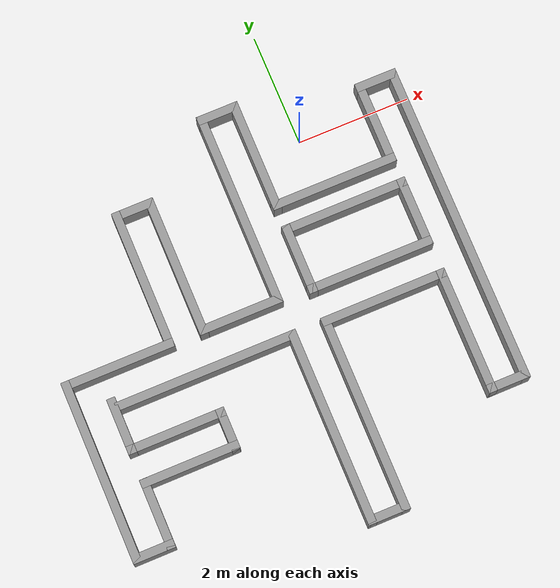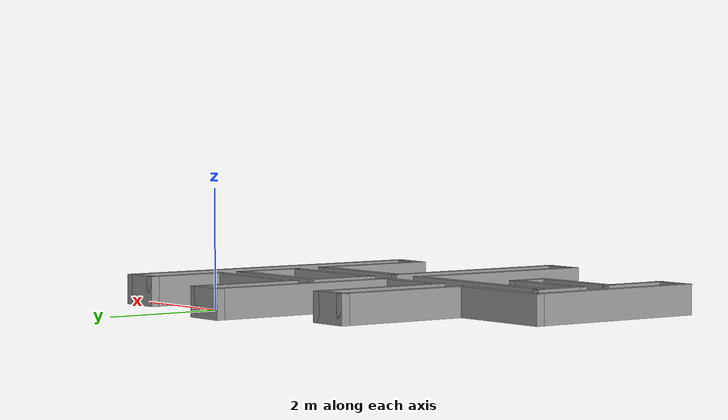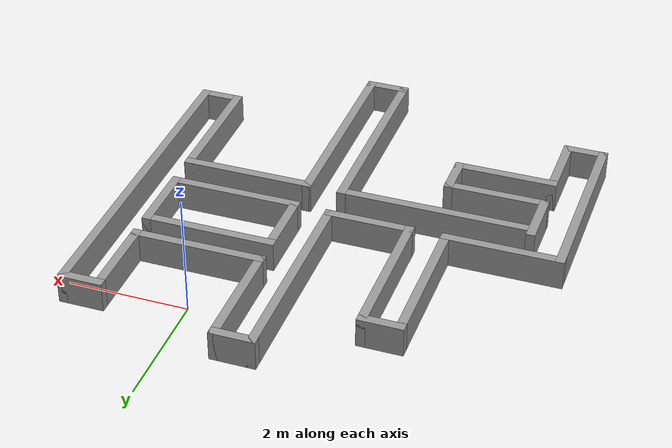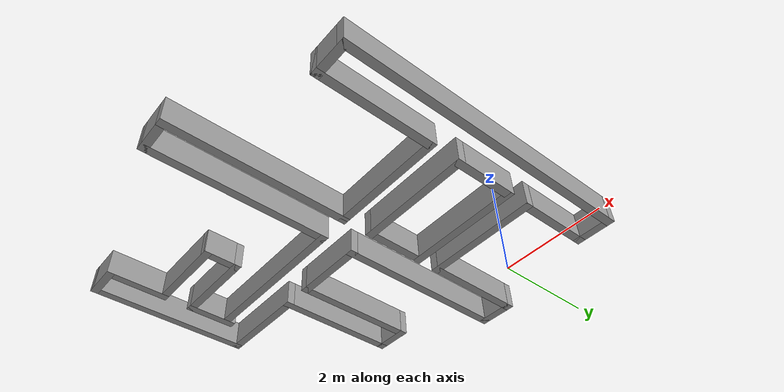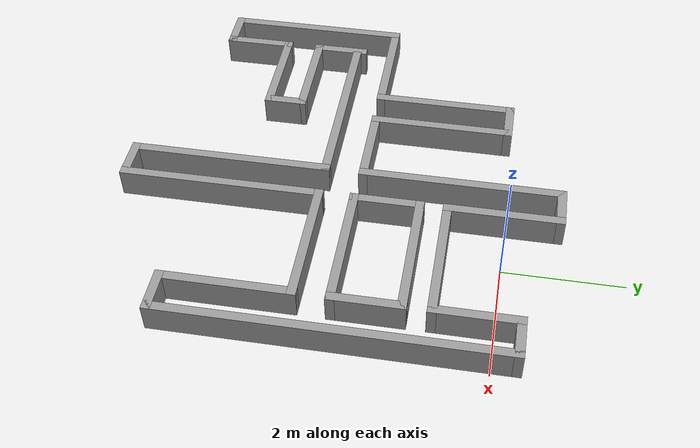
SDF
<?xml version='1.0'?>
<sdf version='1.7'>
  <model name='walls'>
    <pose>-1.67 -2.785 0 0 -0 0</pose>
    <link name='Wall_1'>
      <collision name='Wall_1_Collision'>
        <geometry>
          <box>
            <size>3.25 0.15 0.5</size>
          </box>
        </geometry>
        <pose>0 0 0.25 0 -0 0</pose>
      </collision>
      <visual name='Wall_1_Visual'>
        <pose>0 0 0.25 0 -0 0</pose>
        <geometry>
          <box>
            <size>3.25 0.15 0.5</size>
          </box>
        </geometry>
        <material>
          <script>
            <uri>file://media/materials/scripts/gazebo.material</uri>
            <name>Gazebo/Grey</name>
          </script>
          <ambient>1 1 1 1</ambient>
        </material>
        <meta>
          <layer>0</layer>
        </meta>
      </visual>
      <pose>-1.3 -0.325 0 0 -0 0</pose>
    </link>
    <link name='Wall_10'>
      <collision name='Wall_10_Collision'>
        <geometry>
          <box>
            <size>1.5 0.15 0.5</size>
          </box>
        </geometry>
        <pose>0 0 0.25 0 -0 0</pose>
      </collision>
      <visual name='Wall_10_Visual'>
        <pose>0 0 0.25 0 -0 0</pose>
        <geometry>
          <box>
            <size>1.5 0.15 0.5</size>
          </box>
        </geometry>
        <material>
          <script>
            <uri>file://media/materials/scripts/gazebo.material</uri>
            <name>Gazebo/Grey</name>
          </script>
          <ambient>1 1 1 1</ambient>
        </material>
        <meta>
          <layer>0</layer>
        </meta>
      </visual>
      <pose>2.95 2.5 0 0 -0 -1.5708</pose>
    </link>
    <link name='Wall_11'>
      <collision name='Wall_11_Collision'>
        <geometry>
          <box>
            <size>2.25 0.15 0.5</size>
          </box>
        </geometry>
        <pose>0 0 0.25 0 -0 0</pose>
      </collision>
      <visual name='Wall_11_Visual'>
        <pose>0 0 0.25 0 -0 0</pose>
        <geometry>
          <box>
            <size>2.25 0.15 0.5</size>
          </box>
        </geometry>
        <material>
          <script>
            <uri>file://media/materials/scripts/gazebo.material</uri>
            <name>Gazebo/Grey</name>
          </script>
          <ambient>1 1 1 1</ambient>
        </material>
        <meta>
          <layer>0</layer>
        </meta>
      </visual>
      <pose>1.9 1.825 0 0 -0 3.14159</pose>
    </link>
    <link name='Wall_12'>
      <collision name='Wall_12_Collision'>
        <geometry>
          <box>
            <size>2 0.15 0.5</size>
          </box>
        </geometry>
        <pose>0 0 0.25 0 -0 0</pose>
      </collision>
      <visual name='Wall_12_Visual'>
        <pose>0 0 0.25 0 -0 0</pose>
        <geometry>
          <box>
            <size>2 0.15 0.5</size>
          </box>
        </geometry>
        <material>
          <script>
            <uri>file://media/materials/scripts/gazebo.material</uri>
            <name>Gazebo/Grey</name>
          </script>
          <ambient>1 1 1 1</ambient>
        </material>
        <meta>
          <layer>0</layer>
        </meta>
      </visual>
      <pose>0.85 2.75 0 0 -0 1.5708</pose>
    </link>
    <link name='Wall_13'>
      <collision name='Wall_13_Collision'>
        <geometry>
          <box>
            <size>0.75 0.15 0.5</size>
          </box>
        </geometry>
        <pose>0 0 0.25 0 -0 0</pose>
      </collision>
      <visual name='Wall_13_Visual'>
        <pose>0 0 0.25 0 -0 0</pose>
        <geometry>
          <box>
            <size>0.75 0.15 0.5</size>
          </box>
        </geometry>
        <material>
          <script>
            <uri>file://media/materials/scripts/gazebo.material</uri>
            <name>Gazebo/Grey</name>
          </script>
          <ambient>1 1 1 1</ambient>
        </material>
        <meta>
          <layer>0</layer>
        </meta>
      </visual>
      <pose>0.55 3.675 0 0 -0 3.14159</pose>
    </link>
    <link name='Wall_14'>
      <collision name='Wall_14_Collision'>
        <geometry>
          <box>
            <size>3.5 0.15 0.5</size>
          </box>
        </geometry>
        <pose>0 0 0.25 0 -0 0</pose>
      </collision>
      <visual name='Wall_14_Visual'>
        <pose>0 0 0.25 0 -0 0</pose>
        <geometry>
          <box>
            <size>3.5 0.15 0.5</size>
          </box>
        </geometry>
        <material>
          <script>
            <uri>file://media/materials/scripts/gazebo.material</uri>
            <name>Gazebo/Grey</name>
          </script>
          <ambient>1 1 1 1</ambient>
        </material>
        <meta>
          <layer>0</layer>
        </meta>
      </visual>
      <pose>0.25 2 0 0 -0 -1.5708</pose>
    </link>
    <link name='Wall_15'>
      <collision name='Wall_15_Collision'>
        <geometry>
          <box>
            <size>1.5 0.15 0.5</size>
          </box>
        </geometry>
        <pose>0 0 0.25 0 -0 0</pose>
      </collision>
      <visual name='Wall_15_Visual'>
        <pose>0 0 0.25 0 -0 0</pose>
        <geometry>
          <box>
            <size>1.5 0.15 0.5</size>
          </box>
        </geometry>
        <material>
          <script>
            <uri>file://media/materials/scripts/gazebo.material</uri>
            <name>Gazebo/Grey</name>
          </script>
          <ambient>1 1 1 1</ambient>
        </material>
        <meta>
          <layer>0</layer>
        </meta>
      </visual>
      <pose>-0.425 0.325 0 0 -0 3.14159</pose>
    </link>
    <link name='Wall_16'>
      <collision name='Wall_16_Collision'>
        <geometry>
          <box>
            <size>2.5 0.15 0.5</size>
          </box>
        </geometry>
        <pose>0 0 0.25 0 -0 0</pose>
      </collision>
      <visual name='Wall_16_Visual'>
        <pose>0 0 0.25 0 -0 0</pose>
        <geometry>
          <box>
            <size>2.5 0.15 0.5</size>
          </box>
        </geometry>
        <material>
          <script>
            <uri>file://media/materials/scripts/gazebo.material</uri>
            <name>Gazebo/Grey</name>
          </script>
          <ambient>1 1 1 1</ambient>
        </material>
        <meta>
          <layer>0</layer>
        </meta>
      </visual>
      <pose>-1.1 1.5 0 0 -0 1.5708</pose>
    </link>
    <link name='Wall_17'>
      <collision name='Wall_17_Collision'>
        <geometry>
          <box>
            <size>0.75 0.15 0.5</size>
          </box>
        </geometry>
        <pose>0 0 0.25 0 -0 0</pose>
      </collision>
      <visual name='Wall_17_Visual'>
        <pose>0 0 0.25 0 -0 0</pose>
        <geometry>
          <box>
            <size>0.75 0.15 0.5</size>
          </box>
        </geometry>
        <material>
          <script>
            <uri>file://media/materials/scripts/gazebo.material</uri>
            <name>Gazebo/Grey</name>
          </script>
          <ambient>1 1 1 1</ambient>
        </material>
        <meta>
          <layer>0</layer>
        </meta>
      </visual>
      <pose>-1.4 2.675 0 0 -0 3.14159</pose>
    </link>
    <link name='Wall_18'>
      <collision name='Wall_18_Collision'>
        <geometry>
          <box>
            <size>2.5 0.15 0.5</size>
          </box>
        </geometry>
        <pose>0 0 0.25 0 -0 0</pose>
      </collision>
      <visual name='Wall_18_Visual'>
        <pose>0 0 0.25 0 -0 0</pose>
        <geometry>
          <box>
            <size>2.5 0.15 0.5</size>
          </box>
        </geometry>
        <material>
          <script>
            <uri>file://media/materials/scripts/gazebo.material</uri>
            <name>Gazebo/Grey</name>
          </script>
          <ambient>1 1 1 1</ambient>
        </material>
        <meta>
          <layer>0</layer>
        </meta>
      </visual>
      <pose>-1.7 1.5 0 0 -0 -1.5708</pose>
    </link>
    <link name='Wall_19'>
      <collision name='Wall_19_Collision'>
        <geometry>
          <box>
            <size>2 0.15 0.5</size>
          </box>
        </geometry>
        <pose>0 0 0.25 0 -0 0</pose>
      </collision>
      <visual name='Wall_19_Visual'>
        <pose>0 0 0.25 0 -0 0</pose>
        <geometry>
          <box>
            <size>2 0.15 0.5</size>
          </box>
        </geometry>
        <material>
          <script>
            <uri>file://media/materials/scripts/gazebo.material</uri>
            <name>Gazebo/Grey</name>
          </script>
          <ambient>1 1 1 1</ambient>
        </material>
        <meta>
          <layer>0</layer>
        </meta>
      </visual>
      <pose>-2.625 0.325 0 0 -0 3.14159</pose>
    </link>
    <link name='Wall_2'>
      <collision name='Wall_2_Collision'>
        <geometry>
          <box>
            <size>3.5 0.15 0.5</size>
          </box>
        </geometry>
        <pose>0 0 0.25 0 -0 0</pose>
      </collision>
      <visual name='Wall_2_Visual'>
        <pose>0 0 0.25 0 -0 0</pose>
        <geometry>
          <box>
            <size>3.5 0.15 0.5</size>
          </box>
        </geometry>
        <material>
          <script>
            <uri>file://media/materials/scripts/gazebo.material</uri>
            <name>Gazebo/Grey</name>
          </script>
          <ambient>1 1 1 1</ambient>
        </material>
        <meta>
          <layer>0</layer>
        </meta>
      </visual>
      <pose>0.25 -2 0 0 -0 -1.5708</pose>
    </link>
    <link name='Wall_20'>
      <collision name='Wall_20_Collision'>
        <geometry>
          <box>
            <size>3.25 0.15 0.5</size>
          </box>
        </geometry>
        <pose>0 0 0.25 0 -0 0</pose>
      </collision>
      <visual name='Wall_20_Visual'>
        <pose>0 0 0.25 0 -0 0</pose>
        <geometry>
          <box>
            <size>3.25 0.15 0.5</size>
          </box>
        </geometry>
        <material>
          <script>
            <uri>file://media/materials/scripts/gazebo.material</uri>
            <name>Gazebo/Grey</name>
          </script>
          <ambient>1 1 1 1</ambient>
        </material>
        <meta>
          <layer>0</layer>
        </meta>
      </visual>
      <pose>-3.55 -1.225 0 0 -0 -1.5708</pose>
    </link>
    <link name='Wall_21'>
      <collision name='Wall_21_Collision'>
        <geometry>
          <box>
            <size>0.75 0.15 0.5</size>
          </box>
        </geometry>
        <pose>0 0 0.25 0 -0 0</pose>
      </collision>
      <visual name='Wall_21_Visual'>
        <pose>0 0 0.25 0 -0 0</pose>
        <geometry>
          <box>
            <size>0.75 0.15 0.5</size>
          </box>
        </geometry>
        <material>
          <script>
            <uri>file://media/materials/scripts/gazebo.material</uri>
            <name>Gazebo/Grey</name>
          </script>
          <ambient>1 1 1 1</ambient>
        </material>
        <meta>
          <layer>0</layer>
        </meta>
      </visual>
      <pose>-3.25 -2.775 0 0 -0 0</pose>
    </link>
    <link name='Wall_22'>
      <collision name='Wall_22_Collision'>
        <geometry>
          <box>
            <size>1.25 0.15 0.5</size>
          </box>
        </geometry>
        <pose>0 0 0.25 0 -0 0</pose>
      </collision>
      <visual name='Wall_22_Visual'>
        <pose>0 0 0.25 0 -0 0</pose>
        <geometry>
          <box>
            <size>1.25 0.15 0.5</size>
          </box>
        </geometry>
        <material>
          <script>
            <uri>file://media/materials/scripts/gazebo.material</uri>
            <name>Gazebo/Grey</name>
          </script>
          <ambient>1 1 1 1</ambient>
        </material>
        <meta>
          <layer>0</layer>
        </meta>
      </visual>
      <pose>-2.95 -2.225 0 0 -0 1.5708</pose>
    </link>
    <link name='Wall_23'>
      <collision name='Wall_23_Collision'>
        <geometry>
          <box>
            <size>1.75 0.15 0.5</size>
          </box>
        </geometry>
        <pose>0 0 0.25 0 -0 0</pose>
      </collision>
      <visual name='Wall_23_Visual'>
        <pose>0 0 0.25 0 -0 0</pose>
        <geometry>
          <box>
            <size>1.75 0.15 0.5</size>
          </box>
        </geometry>
        <material>
          <script>
            <uri>file://media/materials/scripts/gazebo.material</uri>
            <name>Gazebo/Grey</name>
          </script>
          <ambient>1 1 1 1</ambient>
        </material>
        <meta>
          <layer>0</layer>
        </meta>
      </visual>
      <pose>-2.15 -1.675 0 0 -0 0</pose>
    </link>
    <link name='Wall_24'>
      <collision name='Wall_24_Collision'>
        <geometry>
          <box>
            <size>0.75 0.15 0.5</size>
          </box>
        </geometry>
        <pose>0 0 0.25 0 -0 0</pose>
      </collision>
      <visual name='Wall_24_Visual'>
        <pose>0 0 0.25 0 -0 0</pose>
        <geometry>
          <box>
            <size>0.75 0.15 0.5</size>
          </box>
        </geometry>
        <material>
          <script>
            <uri>file://media/materials/scripts/gazebo.material</uri>
            <name>Gazebo/Grey</name>
          </script>
          <ambient>1 1 1 1</ambient>
        </material>
        <meta>
          <layer>0</layer>
        </meta>
      </visual>
      <pose>-1.35 -1.375 0 0 -0 1.5708</pose>
    </link>
    <link name='Wall_25'>
      <collision name='Wall_25_Collision'>
        <geometry>
          <box>
            <size>1.75 0.15 0.5</size>
          </box>
        </geometry>
        <pose>0 0 0.25 0 -0 0</pose>
      </collision>
      <visual name='Wall_25_Visual'>
        <pose>0 0 0.25 0 -0 0</pose>
        <geometry>
          <box>
            <size>1.75 0.15 0.5</size>
          </box>
        </geometry>
        <material>
          <script>
            <uri>file://media/materials/scripts/gazebo.material</uri>
            <name>Gazebo/Grey</name>
          </script>
          <ambient>1 1 1 1</ambient>
        </material>
        <meta>
          <layer>0</layer>
        </meta>
      </visual>
      <pose>-2.15 -1.075 0 0 -0 3.14159</pose>
    </link>
    <link name='Wall_26'>
      <collision name='Wall_26_Collision'>
        <geometry>
          <box>
            <size>1 0.15 0.5</size>
          </box>
        </geometry>
        <pose>0 0 0.25 0 -0 0</pose>
      </collision>
      <visual name='Wall_26_Visual'>
        <pose>0 0 0.25 0 -0 0</pose>
        <geometry>
          <box>
            <size>1 0.15 0.5</size>
          </box>
        </geometry>
        <material>
          <script>
            <uri>file://media/materials/scripts/gazebo.material</uri>
            <name>Gazebo/Grey</name>
          </script>
          <ambient>1 1 1 1</ambient>
        </material>
        <meta>
          <layer>0</layer>
        </meta>
      </visual>
      <pose>-2.95 -0.65 0 0 -0 1.5708</pose>
    </link>
    <link name='Wall_28'>
      <collision name='Wall_28_Collision'>
        <geometry>
          <box>
            <size>2.25 0.15 0.5</size>
          </box>
        </geometry>
        <pose>0 0 0.25 0 -0 0</pose>
      </collision>
      <visual name='Wall_28_Visual'>
        <pose>0 0 0.25 0 -0 0</pose>
        <geometry>
          <box>
            <size>2.25 0.15 0.5</size>
          </box>
        </geometry>
        <material>
          <script>
            <uri>file://media/materials/scripts/gazebo.material</uri>
            <name>Gazebo/Grey</name>
          </script>
          <ambient>1 1 1 1</ambient>
        </material>
        <meta>
          <layer>0</layer>
        </meta>
      </visual>
      <pose>1.904 1.371 0 0 -0 0</pose>
    </link>
    <link name='Wall_29'>
      <collision name='Wall_29_Collision'>
        <geometry>
          <box>
            <size>1.25 0.15 0.5</size>
          </box>
        </geometry>
        <pose>0 0 0.25 0 -0 0</pose>
      </collision>
      <visual name='Wall_29_Visual'>
        <pose>0 0 0.25 0 -0 0</pose>
        <geometry>
          <box>
            <size>1.25 0.15 0.5</size>
          </box>
        </geometry>
        <material>
          <script>
            <uri>file://media/materials/scripts/gazebo.material</uri>
            <name>Gazebo/Grey</name>
          </script>
          <ambient>1 1 1 1</ambient>
        </material>
        <meta>
          <layer>0</layer>
        </meta>
      </visual>
      <pose>2.954 0.821 0 0 -0 -1.5708</pose>
    </link>
    <link name='Wall_3'>
      <collision name='Wall_3_Collision'>
        <geometry>
          <box>
            <size>0.75 0.15 0.5</size>
          </box>
        </geometry>
        <pose>0 0 0.25 0 -0 0</pose>
      </collision>
      <visual name='Wall_3_Visual'>
        <pose>0 0 0.25 0 -0 0</pose>
        <geometry>
          <box>
            <size>0.75 0.15 0.5</size>
          </box>
        </geometry>
        <material>
          <script>
            <uri>file://media/materials/scripts/gazebo.material</uri>
            <name>Gazebo/Grey</name>
          </script>
          <ambient>1 1 1 1</ambient>
        </material>
        <meta>
          <layer>0</layer>
        </meta>
      </visual>
      <pose>0.55 -3.675 0 0 -0 0</pose>
    </link>
    <link name='Wall_30'>
      <collision name='Wall_30_Collision'>
        <geometry>
          <box>
            <size>2.25 0.15 0.5</size>
          </box>
        </geometry>
        <pose>0 0 0.25 0 -0 0</pose>
      </collision>
      <visual name='Wall_30_Visual'>
        <pose>0 0 0.25 0 -0 0</pose>
        <geometry>
          <box>
            <size>2.25 0.15 0.5</size>
          </box>
        </geometry>
        <material>
          <script>
            <uri>file://media/materials/scripts/gazebo.material</uri>
            <name>Gazebo/Grey</name>
          </script>
          <ambient>1 1 1 1</ambient>
        </material>
        <meta>
          <layer>0</layer>
        </meta>
      </visual>
      <pose>1.904 0.271 0 0 -0 3.14159</pose>
    </link>
    <link name='Wall_31'>
      <collision name='Wall_31_Collision'>
        <geometry>
          <box>
            <size>1.25 0.15 0.5</size>
          </box>
        </geometry>
        <pose>0 0 0.25 0 -0 0</pose>
      </collision>
      <visual name='Wall_31_Visual'>
        <pose>0 0 0.25 0 -0 0</pose>
        <geometry>
          <box>
            <size>1.25 0.15 0.5</size>
          </box>
        </geometry>
        <material>
          <script>
            <uri>file://media/materials/scripts/gazebo.material</uri>
            <name>Gazebo/Grey</name>
          </script>
          <ambient>1 1 1 1</ambient>
        </material>
        <meta>
          <layer>0</layer>
        </meta>
      </visual>
      <pose>0.854 0.821 0 0 -0 1.5708</pose>
    </link>
    <link name='Wall_4'>
      <collision name='Wall_4_Collision'>
        <geometry>
          <box>
            <size>3.5 0.15 0.5</size>
          </box>
        </geometry>
        <pose>0 0 0.25 0 -0 0</pose>
      </collision>
      <visual name='Wall_4_Visual'>
        <pose>0 0 0.25 0 -0 0</pose>
        <geometry>
          <box>
            <size>3.5 0.15 0.5</size>
          </box>
        </geometry>
        <material>
          <script>
            <uri>file://media/materials/scripts/gazebo.material</uri>
            <name>Gazebo/Grey</name>
          </script>
          <ambient>1 1 1 1</ambient>
        </material>
        <meta>
          <layer>0</layer>
        </meta>
      </visual>
      <pose>0.85 -2 0 0 -0 1.5708</pose>
    </link>
    <link name='Wall_5'>
      <collision name='Wall_5_Collision'>
        <geometry>
          <box>
            <size>2.25 0.15 0.5</size>
          </box>
        </geometry>
        <pose>0 0 0.25 0 -0 0</pose>
      </collision>
      <visual name='Wall_5_Visual'>
        <pose>0 0 0.25 0 -0 0</pose>
        <geometry>
          <box>
            <size>2.25 0.15 0.5</size>
          </box>
        </geometry>
        <material>
          <script>
            <uri>file://media/materials/scripts/gazebo.material</uri>
            <name>Gazebo/Grey</name>
          </script>
          <ambient>1 1 1 1</ambient>
        </material>
        <meta>
          <layer>0</layer>
        </meta>
      </visual>
      <pose>1.9 -0.325 0 0 -0 0</pose>
    </link>
    <link name='Wall_6'>
      <collision name='Wall_6_Collision'>
        <geometry>
          <box>
            <size>2.25 0.15 0.5</size>
          </box>
        </geometry>
        <pose>0 0 0.25 0 -0 0</pose>
      </collision>
      <visual name='Wall_6_Visual'>
        <pose>0 0 0.25 0 -0 0</pose>
        <geometry>
          <box>
            <size>2.25 0.15 0.5</size>
          </box>
        </geometry>
        <material>
          <script>
            <uri>file://media/materials/scripts/gazebo.material</uri>
            <name>Gazebo/Grey</name>
          </script>
          <ambient>1 1 1 1</ambient>
        </material>
        <meta>
          <layer>0</layer>
        </meta>
      </visual>
      <pose>2.95 -1.375 0 0 -0 -1.5708</pose>
    </link>
    <link name='Wall_7'>
      <collision name='Wall_7_Collision'>
        <geometry>
          <box>
            <size>0.75 0.15 0.5</size>
          </box>
        </geometry>
        <pose>0 0 0.25 0 -0 0</pose>
      </collision>
      <visual name='Wall_7_Visual'>
        <pose>0 0 0.25 0 -0 0</pose>
        <geometry>
          <box>
            <size>0.75 0.15 0.5</size>
          </box>
        </geometry>
        <material>
          <script>
            <uri>file://media/materials/scripts/gazebo.material</uri>
            <name>Gazebo/Grey</name>
          </script>
          <ambient>1 1 1 1</ambient>
        </material>
        <meta>
          <layer>0</layer>
        </meta>
      </visual>
      <pose>3.25 -2.425 0 0 -0 0</pose>
    </link>
    <link name='Wall_8'>
      <collision name='Wall_8_Collision'>
        <geometry>
          <box>
            <size>5.75 0.15 0.5</size>
          </box>
        </geometry>
        <pose>0 0 0.25 0 -0 0</pose>
      </collision>
      <visual name='Wall_8_Visual'>
        <pose>0 0 0.25 0 -0 0</pose>
        <geometry>
          <box>
            <size>5.75 0.15 0.5</size>
          </box>
        </geometry>
        <material>
          <script>
            <uri>file://media/materials/scripts/gazebo.material</uri>
            <name>Gazebo/Grey</name>
          </script>
          <ambient>1 1 1 1</ambient>
        </material>
        <meta>
          <layer>0</layer>
        </meta>
      </visual>
      <pose>3.55 0.375 0 0 -0 1.5708</pose>
    </link>
    <link name='Wall_9'>
      <collision name='Wall_9_Collision'>
        <geometry>
          <box>
            <size>0.75 0.15 0.5</size>
          </box>
        </geometry>
        <pose>0 0 0.25 0 -0 0</pose>
      </collision>
      <visual name='Wall_9_Visual'>
        <pose>0 0 0.25 0 -0 0</pose>
        <geometry>
          <box>
            <size>0.75 0.15 0.5</size>
          </box>
        </geometry>
        <material>
          <script>
            <uri>file://media/materials/scripts/gazebo.material</uri>
            <name>Gazebo/Grey</name>
          </script>
          <ambient>1 1 1 1</ambient>
        </material>
        <meta>
          <layer>0</layer>
        </meta>
      </visual>
      <pose>3.25 3.175 0 0 -0 3.14159</pose>
    </link>
    <static>1</static>
  </model>
</sdf>
